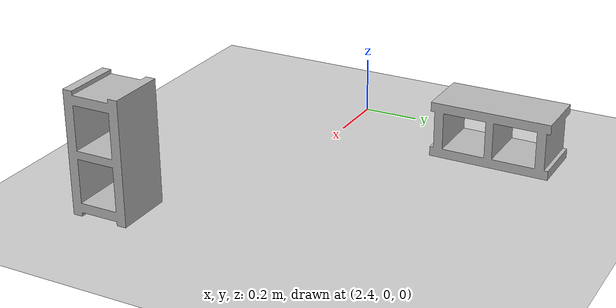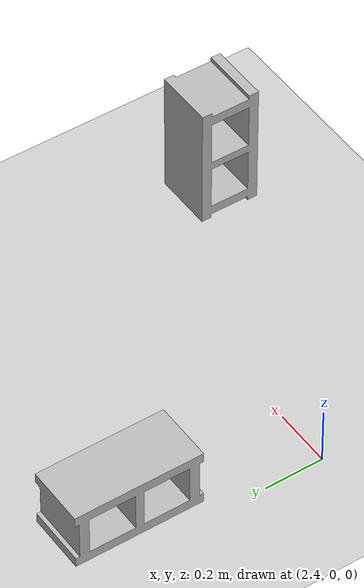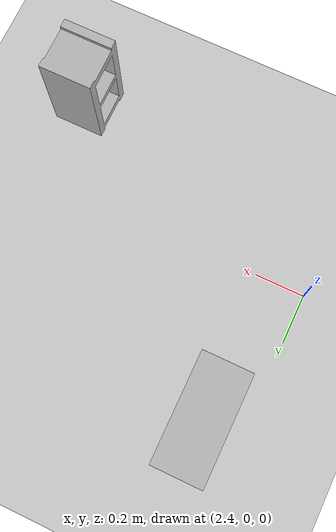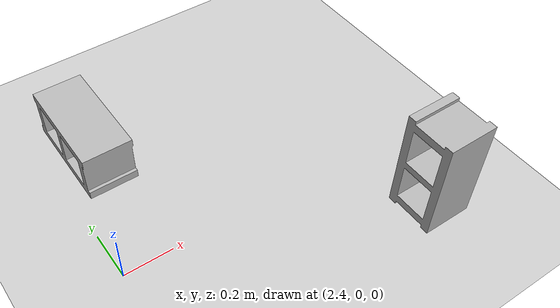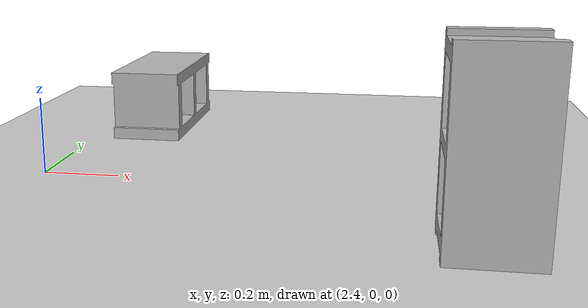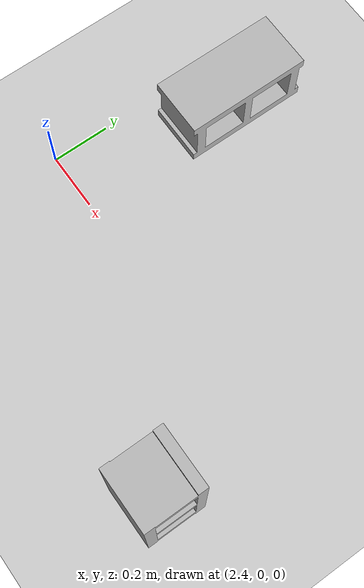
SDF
<sdf version="1.6">
 <world name="default">
  <light name="sun" type="directional">
   <pose>0 0 10 0 -0 0</pose>
   <diffuse>0.8 0.8 0.8 1</diffuse>
   <specular>0.1 0.1 0.1 1</specular>
   <attenuation>
    <range>1000</range>
    <constant>0.9</constant>
    <linear>0.01</linear>
    <quadratic>0.001</quadratic>
   </attenuation>
   <direction>-0.5 0.5 -1</direction>
  </light>
  <model name="ground_plane">
   <static>1</static>
   <link name="link">
    <collision name="collision">
     <geometry><plane><normal>0 0 1</normal><size>100 100</size></plane></geometry>
     <surface><friction><ode><mu>100</mu><mu2>50</mu2></ode></friction></surface>
    </collision>
    <visual name="visual">
     <cast_shadows>0</cast_shadows>
     <geometry><plane><normal>0 0 1</normal><size>100 100</size></plane></geometry>
     <material>
      <script><uri>file://media/materials/scripts/gazebo.material</uri><name>Gazebo/Grey</name></script>
     </material>
    </visual>
   </link>
  </model>
  <gravity>0 0 -9.8</gravity>
  <magnetic_field>6e-06 2.3e-05 -4.2e-05</magnetic_field>
  <atmosphere type="adiabatic"/>
  <physics name="default_physics" default="0" type="ode">
   <max_step_size>0.001</max_step_size>
   <real_time_factor>1</real_time_factor>
   <real_time_update_rate>1000</real_time_update_rate>
  </physics>
  <scene><ambient>0.4 0.4 0.4 1</ambient><background>0.7 0.7 0.7 1</background><shadows>1</shadows></scene>
  <spherical_coordinates>
   <surface_model>EARTH_WGS84</surface_model>
   <latitude_deg>0</latitude_deg>
   <longitude_deg>0</longitude_deg>
   <elevation>0</elevation>
   <heading_deg>0</heading_deg>
  </spherical_coordinates>
  <model name="cinder_block">
   <link name="link">
    <inertial>
     <pose>0 0 0.1016 0 -0 0</pose>
     <mass>5</mass>
     <inertia>
      <ixx>0.028705</ixx>
      <ixy>0</ixy>
      <iyy>0.073708</iyy>
      <ixz>0</ixz>
      <iyz>0</iyz>
      <izz>0.06908</izz>
     </inertia>
    </inertial>
    <visual name="visual">
     <geometry><mesh><uri>model://cinder_block/meshes/cinder_block.dae</uri><scale>1 1 1</scale></mesh></geometry>
    </visual>
    <collision name="left">
     <pose>0 -0.08465 0.1016 0 -0 0</pose>
     <geometry><box><size>0.43495 0.0339 0.2032</size></box></geometry>
     <surface>
      <contact><ode><max_vel>0.1</max_vel><min_depth>0.001</min_depth></ode></contact>
      <friction><ode><mu>1</mu><mu2>1</mu2></ode></friction>
     </surface>
    </collision>
    <collision name="right">
     <pose>0 0.08465 0.1016 0 -0 0</pose>
     <geometry><box><size>0.43495 0.0339 0.2032</size></box></geometry>
     <surface>
      <contact><ode><max_vel>0.1</max_vel><min_depth>0.001</min_depth></ode></contact>
      <friction><ode><mu>1</mu><mu2>1</mu2></ode></friction>
     </surface>
    </collision>
    <collision name="front">
     <pose>0.18625 0 0.1016 0 -0 0</pose>
     <geometry><box><size>0.0339 0.1354 0.203</size></box></geometry>
     <surface>
      <contact><ode><max_vel>0.1</max_vel><min_depth>0.001</min_depth></ode></contact>
      <friction><ode><mu>1</mu><mu2>1</mu2></ode></friction>
     </surface>
    </collision>
    <collision name="middle">
     <pose>0 0 0.1016 0 -0 0</pose>
     <geometry><box><size>0.0339 0.1354 0.203</size></box></geometry>
     <surface>
      <contact><ode><max_vel>0.1</max_vel><min_depth>0.001</min_depth></ode></contact>
      <friction><ode><mu>1</mu><mu2>1</mu2></ode></friction>
     </surface>
    </collision>
    <collision name="back">
     <pose>-0.18625 0 0.1016 0 -0 0</pose>
     <geometry><box><size>0.0339 0.1354 0.203</size></box></geometry>
     <surface>
      <contact><ode><max_vel>0.1</max_vel><min_depth>0.001</min_depth></ode></contact>
      <friction><ode><mu>1</mu><mu2>1</mu2></ode></friction>
     </surface>
    </collision>
   </link>
   <pose>3.3952 -0.36284 0.217183 3.0052 1.57071 3.00491</pose>
  </model>
  <model name="cinder_block_clone">
   <link name="link">
    <inertial>
     <pose>0 0 0.1016 0 -0 0</pose>
     <mass>5</mass>
     <inertia>
      <ixx>0.028705</ixx>
      <ixy>0</ixy>
      <iyy>0.073708</iyy>
      <ixz>0</ixz>
      <iyz>0</iyz>
      <izz>0.06908</izz>
     </inertia>
    </inertial>
    <visual name="visual">
     <geometry><mesh><uri>model://cinder_block/meshes/cinder_block.dae</uri><scale>1 1 1</scale></mesh></geometry>
    </visual>
    <collision name="left">
     <pose>0 -0.08465 0.1016 0 -0 0</pose>
     <geometry><box><size>0.43495 0.0339 0.2032</size></box></geometry>
     <surface>
      <contact><ode><max_vel>0.1</max_vel><min_depth>0.001</min_depth></ode></contact>
      <friction><ode><mu>1</mu><mu2>1</mu2></ode></friction>
     </surface>
    </collision>
    <collision name="right">
     <pose>0 0.08465 0.1016 0 -0 0</pose>
     <geometry><box><size>0.43495 0.0339 0.2032</size></box></geometry>
     <surface>
      <contact><ode><max_vel>0.1</max_vel><min_depth>0.001</min_depth></ode></contact>
      <friction><ode><mu>1</mu><mu2>1</mu2></ode></friction>
     </surface>
    </collision>
    <collision name="front">
     <pose>0.18625 0 0.1016 0 -0 0</pose>
     <geometry><box><size>0.0339 0.1354 0.203</size></box></geometry>
     <surface>
      <contact><ode><max_vel>0.1</max_vel><min_depth>0.001</min_depth></ode></contact>
      <friction><ode><mu>1</mu><mu2>1</mu2></ode></friction>
     </surface>
    </collision>
    <collision name="middle">
     <pose>0 0 0.1016 0 -0 0</pose>
     <geometry><box><size>0.0339 0.1354 0.203</size></box></geometry>
     <surface>
      <contact><ode><max_vel>0.1</max_vel><min_depth>0.001</min_depth></ode></contact>
      <friction><ode><mu>1</mu><mu2>1</mu2></ode></friction>
     </surface>
    </collision>
    <collision name="back">
     <pose>-0.18625 0 0.1016 0 -0 0</pose>
     <geometry><box><size>0.0339 0.1354 0.203</size></box></geometry>
     <surface>
      <contact><ode><max_vel>0.1</max_vel><min_depth>0.001</min_depth></ode></contact>
      <friction><ode><mu>1</mu><mu2>1</mu2></ode></friction>
     </surface>
    </collision>
   </link>
   <pose>2.46109 0.589885 0.101116 1.57089 0.000612 1.57051</pose>
  </model>
 </world>
</sdf>
